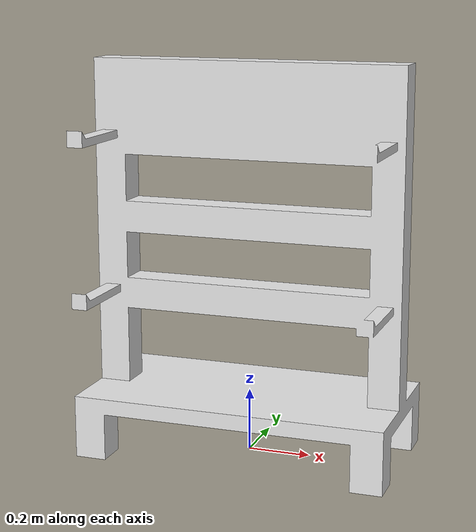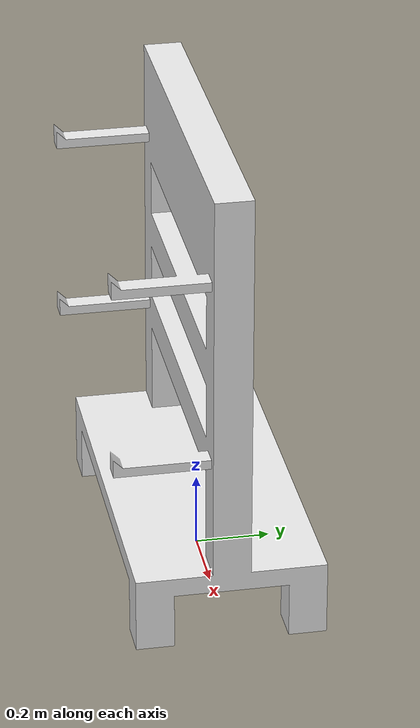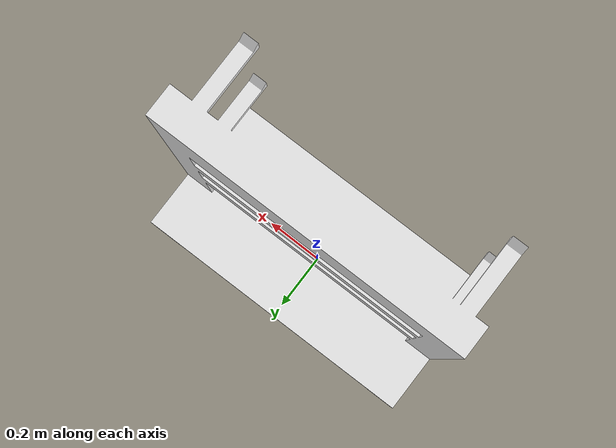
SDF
<?xml version="1.0" ?>
<sdf version="1.6">
  <model name="stand">
  <pose>0 0 0 0 0 0</pose>
  <static>true</static>
    <link name="stand">
      <pose>0 0 0 0 0 0</pose>
      <visual name="stand_visual">
        <geometry><mesh><uri>model://stand/meshes/stand.stl</uri></mesh></geometry>
        <material>
        <script>
          <uri>file://media/materials/scripts/gazebo.material</uri>
          <name>Gazebo/White</name>
        </script>
        </material>
      </visual>
      <collision name="stand_collision">
        <geometry><mesh><uri>model://stand/meshes/stand.stl</uri></mesh></geometry>
      </collision>
    </link>

  </model>
</sdf>
